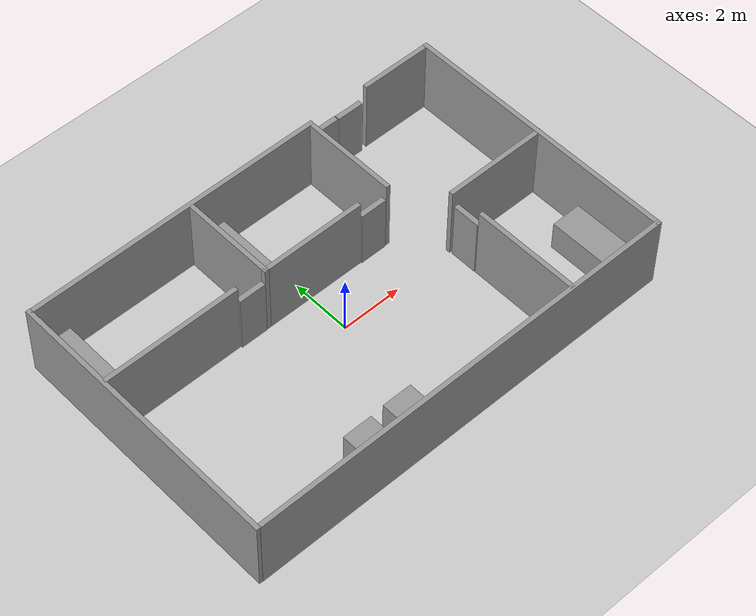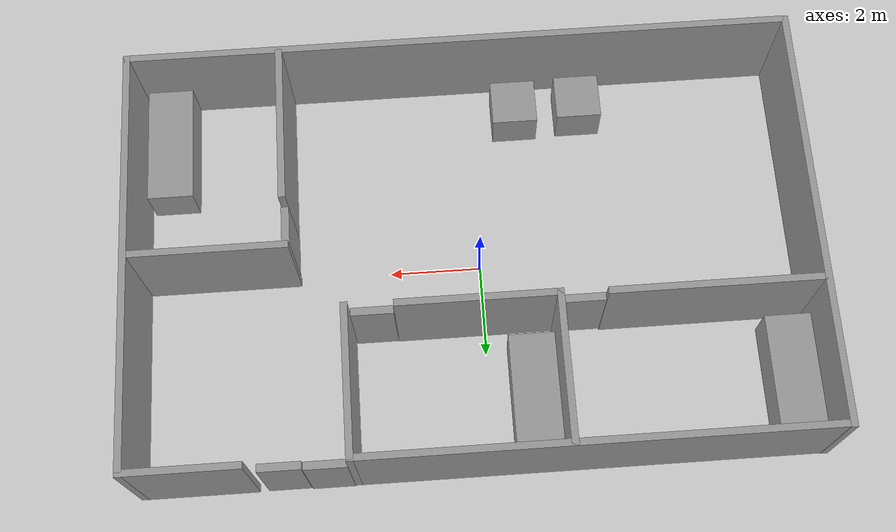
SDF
<sdf version="1.7">
 <world name="default">
  <light name="sun" type="directional">
   <pose>0 0 10 0 -0 0</pose>
   <diffuse>0.8 0.8 0.8 1</diffuse>
   <specular>0.2 0.2 0.2 1</specular>
   <attenuation>
    <range>1000</range>
    <constant>0.9</constant>
    <linear>0.01</linear>
    <quadratic>0.001</quadratic>
   </attenuation>
   <direction>-0.5 0.1 -0.9</direction>
   <spot><inner_angle>0</inner_angle><outer_angle>0</outer_angle><falloff>0</falloff></spot>
  </light>
  <model name="ground_plane">
   <static>1</static>
   <link name="link">
    <collision name="collision">
     <geometry><plane><normal>0 0 1</normal><size>100 100</size></plane></geometry>
     <surface>
      <contact><collide_bitmask>65535</collide_bitmask></contact>
      <friction><ode><mu>100</mu><mu2>50</mu2></ode></friction>
     </surface>
    </collision>
    <visual name="visual">
     <cast_shadows>0</cast_shadows>
     <geometry><plane><normal>0 0 1</normal><size>100 100</size></plane></geometry>
     <material>
      <script><uri>file://media/materials/scripts/gazebo.material</uri><name>Gazebo/Grey</name></script>
     </material>
    </visual>
   </link>
  </model>
  <gravity>0 0 -9.8</gravity>
  <magnetic_field>6e-06 2.3e-05 -4.2e-05</magnetic_field>
  <atmosphere type="adiabatic"/>
  <physics type="ode">
   <max_step_size>0.001</max_step_size>
   <real_time_factor>1</real_time_factor>
   <real_time_update_rate>1000</real_time_update_rate>
  </physics>
  <scene><ambient>0.4 0.4 0.4 1</ambient><background>0.7 0.7 0.7 1</background><shadows>1</shadows></scene>
  <spherical_coordinates>
   <surface_model>EARTH_WGS84</surface_model>
   <latitude_deg>0</latitude_deg>
   <longitude_deg>0</longitude_deg>
   <elevation>0</elevation>
   <heading_deg>0</heading_deg>
  </spherical_coordinates>
  <model name="Untitled">
   <pose>0.17949 0.05675 0 0 -0 0</pose>
   <link name="Door_2">
    <collision name="Door_2_Collision">
     <geometry><box><size>0.9 0.17 2</size></box></geometry>
     <pose>0 0 1 0 -0 0</pose>
    </collision>
    <visual name="Door_2_Visual">
     <pose>0 0 1 0 -0 0</pose>
     <geometry><box><size>0.9 0.17 2</size></box></geometry>
     <material>
      <script><uri>file://media/materials/scripts/gazebo.material</uri><name>Gazebo/Grey</name></script>
     </material>
    </visual>
    <pose>4.16549 4.52387 0 0 -0 0</pose>
   </link>
   <link name="Door_3">
    <collision name="Door_3_Collision">
     <geometry><box><size>0.9 0.17 2</size></box></geometry>
     <pose>0 0 1 0 -0 0</pose>
    </collision>
    <visual name="Door_3_Visual">
     <pose>0 0 1 0 -0 0</pose>
     <geometry><box><size>0.9 0.17 2</size></box></geometry>
     <material>
      <script><uri>file://media/materials/scripts/gazebo.material</uri><name>Gazebo/Grey</name></script>
     </material>
    </visual>
    <pose>3.24027 4.54399 0 0 -0 0</pose>
   </link>
   <link name="Door_4">
    <collision name="Door_4_Collision">
     <geometry><box><size>0.9 0.17 2</size></box></geometry>
     <pose>0 0 1 0 -0 0</pose>
    </collision>
    <visual name="Door_4_Visual">
     <pose>0 0 1 0 -0 0</pose>
     <geometry><box><size>0.9 0.17 2</size></box></geometry>
     <material>
      <script><uri>file://media/materials/scripts/gazebo.material</uri><name>Gazebo/Grey</name></script>
     </material>
    </visual>
    <pose>2.17425 1.40627 0 0 -0 0</pose>
   </link>
   <link name="Door_5">
    <collision name="Door_5_Collision">
     <geometry><box><size>0.9 0.17 2</size></box></geometry>
     <pose>0 0 1 0 -0 0</pose>
    </collision>
    <visual name="Door_5_Visual">
     <pose>0 0 1 0 -0 0</pose>
     <geometry><box><size>0.9 0.17 2</size></box></geometry>
     <material>
      <script><uri>file://media/materials/scripts/gazebo.material</uri><name>Gazebo/Grey</name></script>
     </material>
    </visual>
    <pose>-2.25074 1.42638 0 0 -0 0</pose>
   </link>
   <link name="Door_6">
    <collision name="Door_6_Collision">
     <geometry><box><size>0.9 0.17 2</size></box></geometry>
     <pose>0 0 1 0 -0 0</pose>
    </collision>
    <visual name="Door_6_Visual">
     <pose>0 0 1 0 -0 0</pose>
     <geometry><box><size>0.9 0.17 2</size></box></geometry>
     <material>
      <script><uri>file://media/materials/scripts/gazebo.material</uri><name>Gazebo/Grey</name></script>
     </material>
    </visual>
    <pose>3.92413 -0.584973 0 0 -0 1.5708</pose>
   </link>
   <link name="Wall_11">
    <collision name="Wall_11_Collision">
     <geometry><box><size>10 0.15 2.5</size></box></geometry>
     <pose>0 0 1.25 0 -0 0</pose>
    </collision>
    <visual name="Wall_11_Visual">
     <pose>0 0 1.25 0 -0 0</pose>
     <geometry><box><size>10 0.15 2.5</size></box></geometry>
     <material>
      <script><uri>file://media/materials/scripts/gazebo.material</uri><name>Gazebo/Grey</name></script>
      <ambient>1 1 1 1</ambient>
     </material>
     <meta><layer>0</layer></meta>
    </visual>
    <pose>-2.20768 4.54399 0 0 -0 3.14159</pose>
   </link>
   <link name="Wall_20">
    <collision name="Wall_20_Collision">
     <geometry><box><size>3.27875 0.15 2.5</size></box></geometry>
     <pose>0 0 1.25 0 -0 0</pose>
    </collision>
    <visual name="Wall_20_Visual">
     <pose>0 0 1.25 0 -0 0</pose>
     <geometry><box><size>3.27875 0.15 2.5</size></box></geometry>
     <material>
      <script><uri>file://media/materials/scripts/gazebo.material</uri><name>Gazebo/Grey</name></script>
      <ambient>1 1 1 1</ambient>
     </material>
     <meta><layer>0</layer></meta>
    </visual>
    <pose>2.71732 2.97961 0 0 -0 -1.5708</pose>
   </link>
   <link name="Wall_22">
    <collision name="Wall_22_Collision">
     <geometry><box><size>3.5 0.15 2.5</size></box></geometry>
     <pose>0 0 1.25 0 -0 0</pose>
    </collision>
    <visual name="Wall_22_Visual">
     <pose>0 0 1.25 0 -0 0</pose>
     <geometry><box><size>3.5 0.15 2.5</size></box></geometry>
     <material>
      <script><uri>file://media/materials/scripts/gazebo.material</uri><name>Gazebo/Grey</name></script>
      <ambient>1 1 1 1</ambient>
     </material>
     <meta><layer>0</layer></meta>
    </visual>
    <pose>-0.043816 1.42638 0 0 -0 3.14159</pose>
   </link>
   <link name="Wall_23">
    <collision name="Wall_23_Collision">
     <geometry><box><size>3.25 0.15 2.5</size></box></geometry>
     <pose>0 0 1.25 0 -0 0</pose>
    </collision>
    <visual name="Wall_23_Visual">
     <pose>0 0 1.25 0 -0 0</pose>
     <geometry><box><size>3.25 0.15 2.5</size></box></geometry>
     <material>
      <script><uri>file://media/materials/scripts/gazebo.material</uri><name>Gazebo/Grey</name></script>
      <ambient>1 1 1 1</ambient>
     </material>
     <meta><layer>0</layer></meta>
    </visual>
    <pose>-1.71882 2.97638 0 0 -0 1.5708</pose>
   </link>
   <link name="Wall_25">
    <collision name="Wall_25_Collision">
     <geometry><box><size>9.25 0.15 2.5</size></box></geometry>
     <pose>0 0 1.25 0 -0 0</pose>
    </collision>
    <visual name="Wall_25_Visual">
     <pose>0 0 1.25 0 -0 0</pose>
     <geometry><box><size>9.25 0.15 2.5</size></box></geometry>
     <material>
      <script><uri>file://media/materials/scripts/gazebo.material</uri><name>Gazebo/Grey</name></script>
      <ambient>1 1 1 1</ambient>
     </material>
     <meta><layer>0</layer></meta>
    </visual>
    <pose>7.22814 -0.005738 0 0 -0 -1.5708</pose>
   </link>
   <link name="Wall_26">
    <collision name="Wall_26_Collision">
     <geometry><box><size>14.5 0.15 2.5</size></box></geometry>
     <pose>0 0 1.25 0 -0 0</pose>
    </collision>
    <visual name="Wall_26_Visual">
     <pose>0 0 1.25 0 -0 0</pose>
     <geometry><box><size>14.5 0.15 2.5</size></box></geometry>
     <material>
      <script><uri>file://media/materials/scripts/gazebo.material</uri><name>Gazebo/Grey</name></script>
      <ambient>1 1 1 1</ambient>
     </material>
     <meta><layer>0</layer></meta>
    </visual>
    <pose>0.053141 -4.55574 0 0 -0 3.14159</pose>
   </link>
   <link name="Wall_28">
    <collision name="Wall_28_Collision">
     <geometry><box><size>4.5 0.15 2.5</size></box></geometry>
     <pose>0 0 1.25 0 -0 0</pose>
    </collision>
    <visual name="Wall_28_Visual">
     <pose>0 0 1.25 0 -0 0</pose>
     <geometry><box><size>4.5 0.15 2.5</size></box></geometry>
     <material>
      <script><uri>file://media/materials/scripts/gazebo.material</uri><name>Gazebo/Grey</name></script>
      <ambient>1 1 1 1</ambient>
     </material>
     <meta><layer>0</layer></meta>
    </visual>
    <pose>-4.94869 1.46661 0 0 -0 3.14159</pose>
   </link>
   <link name="Wall_30">
    <collision name="Wall_30_Collision">
     <geometry><box><size>3.5 0.15 2.5</size></box></geometry>
     <pose>0 0 1.25 0 -0 0</pose>
    </collision>
    <visual name="Wall_30_Visual">
     <pose>0 0 1.25 0 -0 0</pose>
     <geometry><box><size>3.5 0.15 2.5</size></box></geometry>
     <material>
      <script><uri>file://media/materials/scripts/gazebo.material</uri><name>Gazebo/Grey</name></script>
      <ambient>1 1 1 1</ambient>
     </material>
     <meta><layer>0</layer></meta>
    </visual>
    <pose>3.92413 -2.81201 0 0 -0 1.5708</pose>
   </link>
   <link name="Wall_32">
    <collision name="Wall_32_Collision">
     <geometry><box><size>3.5 0.15 2.5</size></box></geometry>
     <pose>0 0 1.25 0 -0 0</pose>
    </collision>
    <visual name="Wall_32_Visual">
     <pose>0 0 1.25 0 -0 0</pose>
     <geometry><box><size>3.5 0.15 2.5</size></box></geometry>
     <material>
      <script><uri>file://media/materials/scripts/gazebo.material</uri><name>Gazebo/Grey</name></script>
      <ambient>1 1 1 1</ambient>
     </material>
     <meta><layer>0</layer></meta>
    </visual>
    <pose>5.5589 -0.001679 0 0 -0 0</pose>
   </link>
   <link name="Wall_6">
    <collision name="Wall_6_Collision">
     <geometry><box><size>9.25 0.15 2.5</size></box></geometry>
     <pose>0 0 1.25 0 -0 0</pose>
    </collision>
    <visual name="Wall_6_Visual">
     <pose>0 0 1.25 0 -0 0</pose>
     <geometry><box><size>9.25 0.15 2.5</size></box></geometry>
     <material>
      <script><uri>file://media/materials/scripts/gazebo.material</uri><name>Gazebo/Grey</name></script>
      <ambient>1 1 1 1</ambient>
     </material>
     <meta><layer>0</layer></meta>
    </visual>
    <pose>-7.2339 0.005738 0 0 -0 -1.5708</pose>
   </link>
   <link name="Wall_9">
    <collision name="Wall_9_Collision">
     <geometry><box><size>2.5 0.15 2.5</size></box></geometry>
     <pose>0 0 1.25 0 -0 0</pose>
    </collision>
    <visual name="Wall_9_Visual">
     <pose>0 0 1.25 0 -0 0</pose>
     <geometry><box><size>2.5 0.15 2.5</size></box></geometry>
     <material>
      <script><uri>file://media/materials/scripts/gazebo.material</uri><name>Gazebo/Grey</name></script>
      <ambient>1 1 1 1</ambient>
     </material>
     <meta><layer>0</layer></meta>
    </visual>
    <pose>6.05314 4.54426 0 0 -0 3.14159</pose>
   </link>
   <static>1</static>
  </model>
  <model name="unit_bed">
   <link name="link">
    <inertial>
     <mass>2.6139</mass>
     <inertia><ixx>1.7061</ixx><ixy>0</ixy><ixz>0</ixz><iyy>0.43565</iyy><iyz>0</iyz><izz>1.7061</izz></inertia>
    </inertial>
    <pose>-0.100259 -0.521259 0 0 -0 0</pose>
    <visual name="visual">
     <geometry><box><size>1 2.61389 1</size></box></geometry>
     <material>
      <script><name>Gazebo/Grey</name><uri>file://media/materials/scripts/gazebo.material</uri></script>
      <shader type="pixel"/>
     </material>
    </visual>
    <collision name="collision">
     <geometry><box><size>1 2.61389 1</size></box></geometry>
     <surface>
      <friction>
       <ode><mu>1</mu><mu2>1</mu2><fdir1>0 0 0</fdir1><slip1>0</slip1><slip2>0</slip2></ode>
       <torsional>
        <coefficient>1</coefficient>
        <patch_radius>0</patch_radius>
        <surface_radius>0</surface_radius>
        <use_patch_radius>1</use_patch_radius>
        <ode><slip>0</slip></ode>
       </torsional>
      </friction>
      <bounce><restitution_coefficient>0</restitution_coefficient><threshold>1e+06</threshold></bounce>
      <contact>
       <collide_without_contact>0</collide_without_contact>
       <collide_without_contact_bitmask>1</collide_without_contact_bitmask>
       <collide_bitmask>1</collide_bitmask>
       <ode>
        <soft_cfm>0</soft_cfm>
        <soft_erp>0.2</soft_erp>
        <kp>1e+13</kp>
        <kd>1</kd>
        <max_vel>0.01</max_vel>
        <min_depth>0</min_depth>
       </ode>
       <bullet>
        <split_impulse>1</split_impulse>
        <split_impulse_penetration_threshold>-0.01</split_impulse_penetration_threshold>
        <soft_cfm>0</soft_cfm>
        <soft_erp>0.2</soft_erp>
        <kp>1e+13</kp>
        <kd>1</kd>
       </bullet>
      </contact>
     </surface>
    </collision>
   </link>
   <static>0</static>
   <pose>-0.864068 3.70836 0.5 0 -0 1e-06</pose>
  </model>
  <model name="unit_bed_clone_0">
   <link name="link">
    <inertial>
     <mass>2.6139</mass>
     <inertia><ixx>1.7061</ixx><ixy>0</ixy><ixz>0</ixz><iyy>0.43565</iyy><iyz>0</iyz><izz>1.7061</izz></inertia>
    </inertial>
    <pose>-0.100259 -0.521259 0 0 -0 0</pose>
    <visual name="visual">
     <geometry><box><size>1 2.61389 1</size></box></geometry>
     <material>
      <script><name>Gazebo/Grey</name><uri>file://media/materials/scripts/gazebo.material</uri></script>
      <shader type="pixel"/>
     </material>
    </visual>
    <collision name="collision">
     <geometry><box><size>1 2.61389 1</size></box></geometry>
     <surface>
      <friction>
       <ode><mu>1</mu><mu2>1</mu2><fdir1>0 0 0</fdir1><slip1>0</slip1><slip2>0</slip2></ode>
       <torsional>
        <coefficient>1</coefficient>
        <patch_radius>0</patch_radius>
        <surface_radius>0</surface_radius>
        <use_patch_radius>1</use_patch_radius>
        <ode><slip>0</slip></ode>
       </torsional>
      </friction>
      <bounce><restitution_coefficient>0</restitution_coefficient><threshold>1e+06</threshold></bounce>
      <contact>
       <collide_without_contact>0</collide_without_contact>
       <collide_without_contact_bitmask>1</collide_without_contact_bitmask>
       <collide_bitmask>1</collide_bitmask>
       <ode>
        <soft_cfm>0</soft_cfm>
        <soft_erp>0.2</soft_erp>
        <kp>1e+13</kp>
        <kd>1</kd>
        <max_vel>0.01</max_vel>
        <min_depth>0</min_depth>
       </ode>
       <bullet>
        <split_impulse>1</split_impulse>
        <split_impulse_penetration_threshold>-0.01</split_impulse_penetration_threshold>
        <soft_cfm>0</soft_cfm>
        <soft_erp>0.2</soft_erp>
        <kp>1e+13</kp>
        <kd>1</kd>
       </bullet>
      </contact>
     </surface>
    </collision>
   </link>
   <static>0</static>
   <pose>-6.37913 3.66792 0.5 -0 -0 -5e-06</pose>
  </model>
  <model name="unit_bed_clone_1">
   <link name="link">
    <inertial>
     <mass>2.6139</mass>
     <inertia><ixx>1.7061</ixx><ixy>0</ixy><ixz>0</ixz><iyy>0.43565</iyy><iyz>0</iyz><izz>1.7061</izz></inertia>
    </inertial>
    <pose>-0.100259 -0.521259 0 0 -0 0</pose>
    <visual name="visual">
     <geometry><box><size>1 2.61389 1</size></box></geometry>
     <material>
      <script><name>Gazebo/Grey</name><uri>file://media/materials/scripts/gazebo.material</uri></script>
      <shader type="pixel"/>
     </material>
    </visual>
    <collision name="collision">
     <geometry><box><size>1 2.61389 1</size></box></geometry>
     <surface>
      <friction>
       <ode><mu>1</mu><mu2>1</mu2><fdir1>0 0 0</fdir1><slip1>0</slip1><slip2>0</slip2></ode>
       <torsional>
        <coefficient>1</coefficient>
        <patch_radius>0</patch_radius>
        <surface_radius>0</surface_radius>
        <use_patch_radius>1</use_patch_radius>
        <ode><slip>0</slip></ode>
       </torsional>
      </friction>
      <bounce><restitution_coefficient>0</restitution_coefficient><threshold>1e+06</threshold></bounce>
      <contact>
       <collide_without_contact>0</collide_without_contact>
       <collide_without_contact_bitmask>1</collide_without_contact_bitmask>
       <collide_bitmask>1</collide_bitmask>
       <ode>
        <soft_cfm>0</soft_cfm>
        <soft_erp>0.2</soft_erp>
        <kp>1e+13</kp>
        <kd>1</kd>
        <max_vel>0.01</max_vel>
        <min_depth>0</min_depth>
       </ode>
       <bullet>
        <split_impulse>1</split_impulse>
        <split_impulse_penetration_threshold>-0.01</split_impulse_penetration_threshold>
        <soft_cfm>0</soft_cfm>
        <soft_erp>0.2</soft_erp>
        <kp>1e+13</kp>
        <kd>1</kd>
       </bullet>
      </contact>
     </surface>
    </collision>
   </link>
   <static>0</static>
   <pose>6.85363 -2.59579 0.5 0 0 -5e-06</pose>
  </model>
  <model name="unit_box">
   <pose>-1.02292 -3.63058 0.5 -0 -0 -0</pose>
   <link name="link">
    <inertial>
     <mass>1</mass>
     <inertia>
      <ixx>0.166667</ixx>
      <ixy>0</ixy>
      <ixz>0</ixz>
      <iyy>0.166667</iyy>
      <iyz>0</iyz>
      <izz>0.166667</izz>
     </inertia>
    </inertial>
    <collision name="collision"><geometry><box><size>1 1 1</size></box></geometry></collision>
    <visual name="visual">
     <geometry><box><size>1 1 1</size></box></geometry>
     <material>
      <script><name>Gazebo/Grey</name><uri>file://media/materials/scripts/gazebo.material</uri></script>
     </material>
    </visual>
   </link>
  </model>
  <model name="unit_box_clone">
   <pose>-2.48146 -3.6699 0.5 -0 -0 -0</pose>
   <link name="link">
    <inertial>
     <mass>1</mass>
     <inertia>
      <ixx>0.166667</ixx>
      <ixy>0</ixy>
      <ixz>0</ixz>
      <iyy>0.166667</iyy>
      <iyz>0</iyz>
      <izz>0.166667</izz>
     </inertia>
    </inertial>
    <collision name="collision"><geometry><box><size>1 1 1</size></box></geometry></collision>
    <visual name="visual">
     <geometry><box><size>1 1 1</size></box></geometry>
     <material>
      <script><name>Gazebo/Grey</name><uri>file://media/materials/scripts/gazebo.material</uri></script>
     </material>
    </visual>
   </link>
  </model>
 </world>
</sdf>
